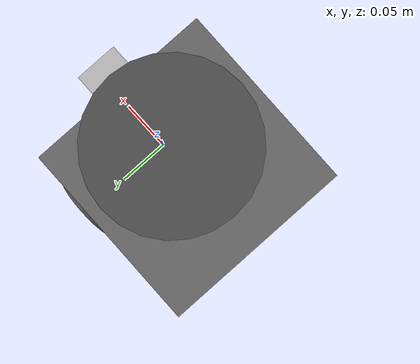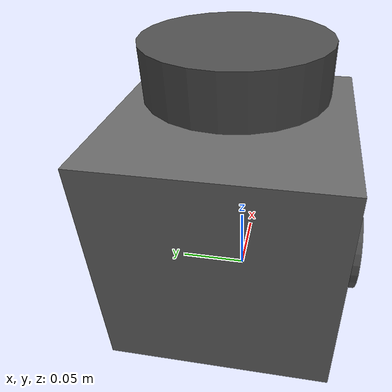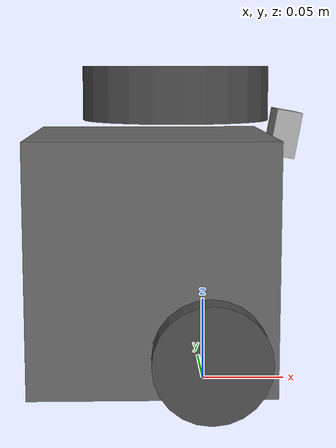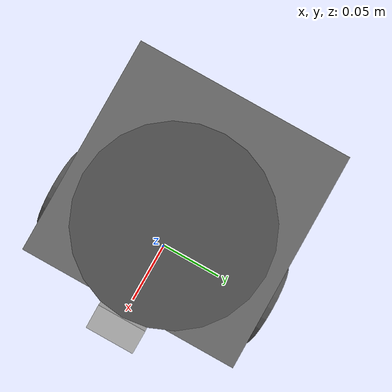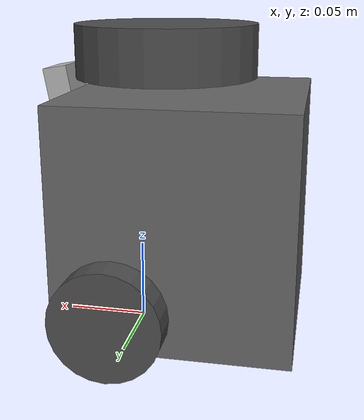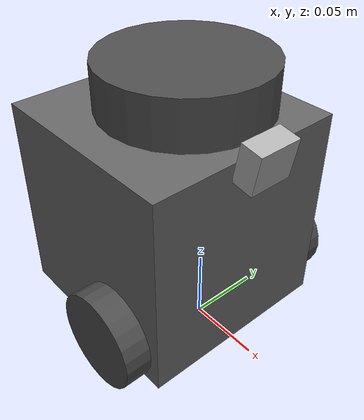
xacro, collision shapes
<?xml version="1.0" ?>
<robot name="turtlebot3_burger"
  xmlns:xacro="http://ros.org/wiki/xacro">

  <!-- Define constants for reuse -->
  <xacro:property name="wheel_radius" value="0.033"/>
  <xacro:property name="wheel_width" value="0.018"/>
  <xacro:property name="wheel_separation" value="0.160"/>
  <xacro:property name="base_length" value="0.140"/>
  <xacro:property name="base_width" value="0.140"/>
  <xacro:property name="base_height" value="0.143"/>

  <!-- Material Definitions -->
  <material name="black">
    <color rgba="0.0 0.0 0.0 1.0"/>
  </material>
  <material name="dark">
    <color rgba="0.3 0.3 0.3 1.0"/>
  </material>
  <material name="light_black">
    <color rgba="0.4 0.4 0.4 1.0"/>
  </material>
  <material name="blue">
    <color rgba="0.0 0.0 0.8 1.0"/>
  </material>
  <material name="green">
    <color rgba="0.0 0.8 0.0 1.0"/>
  </material>
  <material name="grey">
    <color rgba="0.5 0.5 0.5 1.0"/>
  </material>
  <material name="orange">
    <color rgba="1.0 0.4235 0.0392 1.0"/>
  </material>
  <material name="brown">
    <color rgba="0.8706 0.8118 0.7647 1.0"/>
  </material>
  <material name="red">
    <color rgba="0.8 0.0 0.0 1.0"/>
  </material>
  <material name="white">
    <color rgba="1.0 1.0 1.0 1.0"/>
  </material>

  <!-- Base Footprint -->
  <link name="base_footprint"/>

  <!-- Base Link -->
  <link name="base_link">
    <visual>
      <origin xyz="-0.032 0 0.0" rpy="0 0 0"/>
      <geometry>
        <mesh filename="file://$(find project)/models/turltebot3_burger_camera/meshes/burger_base.stl" scale="0.001 0.001 0.001"/>
      </geometry>
      <material name="light_black"/>
    </visual>
    <collision>
      <origin xyz="-0.032 0 0.070" rpy="0 0 0"/>
      <geometry>
        <box size="${base_length} ${base_width} ${base_height}"/>
      </geometry>
    </collision>
    <inertial>
      <origin xyz="0 0 0" rpy="0 0 0"/>
      <mass value="0.82573504"/>
      <inertia ixx="0.72197393" ixy="4.686399e-10" ixz="-1.09525703e-08" iyy="0.72197393" iyz="2.8582649e-09" izz="0.653050163"/>
    </inertial>
  </link>

  <joint name="base_joint" type="fixed">
    <parent link="base_footprint"/>
    <child link="base_link"/>
    <origin xyz="0.0 0.0 0.010" rpy="0 0 0"/>
  </joint>

  <!-- Wheel Left -->
  <link name="wheel_left_link">
    <visual>
      <origin xyz="0 0 0" rpy="1.57 0 0"/>
      <geometry>
        <mesh filename="file://$(find project)/models/turltebot3_burger_camera/meshes/left_tire.stl" scale="0.001 0.001 0.001"/>
      </geometry>
      <material name="dark"/>
    </visual>
    <collision>
      <origin xyz="0 0 0" rpy="0 0 0"/>
      <geometry>
        <cylinder length="${wheel_width}" radius="${wheel_radius}"/>
      </geometry>
    </collision>
    <inertial>
      <origin xyz="0 0 0" />
      <mass value="0.02849894" />
      <inertia ixx="0.0018158194" ixy="-9.3392e-12" ixz="1.04909e-11" iyy="0.0032922126" iyz="5.75694e-11" izz="0.0018158194" />
    </inertial>
  </link>

  <joint name="wheel_left_joint" type="continuous">
    <parent link="base_link"/>
    <child link="wheel_left_link"/>
    <origin xyz="0.0 0.08 0.023" rpy="-1.57 0 0"/>
    <axis xyz="0 0 1"/>
  </joint>

  <!-- Wheel Right -->
  <link name="wheel_right_link">
    <visual>
      <origin xyz="0 0 0" rpy="1.57 0 0"/>
      <geometry>
        <mesh filename="file://$(find project)/models/turltebot3_burger_camera/meshes/right_tire.stl" scale="0.001 0.001 0.001"/>
      </geometry>
      <material name="dark"/>
    </visual>
    <collision>
      <origin xyz="0 0 0" rpy="0 0 0"/>
      <geometry>
        <cylinder length="${wheel_width}" radius="${wheel_radius}"/>
      </geometry>
    </collision>
    <inertial>
      <origin xyz="0 0 0" />
      <mass value="0.02849894" />
      <inertia ixx="0.0018158194" ixy="-9.3392e-12" ixz="1.04909e-11" iyy="0.0032922126" iyz="5.75694e-11" izz="0.0018158194" />
    </inertial>
  </link>

  <joint name="wheel_right_joint" type="continuous">
    <parent link="base_link"/>
    <child link="wheel_right_link"/>
    <origin xyz="0.0 -0.08 0.023" rpy="-1.57 0 0"/>
    <axis xyz="0 0 1"/>
  </joint>

  <!-- Caster Back -->
  <link name="caster_back_link">
    <collision>
      <origin xyz="0 0.001 0" rpy="0 0 0"/>
      <geometry>
        <box size="0.030 0.009 0.020"/>
      </geometry>
    </collision>
    <inertial>
      <origin xyz="0 0 0" />
      <mass value="0.005" />
      <inertia ixx="0.001" ixy="0.0" ixz="0.0" iyy="0.001" iyz="0.0" izz="0.001" />
    </inertial>
  </link>

  <joint name="caster_back_joint" type="fixed">
    <parent link="base_link"/>
    <child link="caster_back_link"/>
    <origin xyz="-0.081 0 -0.004" rpy="-1.57 0 0"/>
  </joint>

  <!-- IMU -->
  <link name="imu_link"/>

  <joint name="imu_joint" type="fixed">
    <parent link="base_link"/>
    <child link="imu_link"/>
    <origin xyz="-0.032 0 0.068" rpy="0 0 0"/>
  </joint>

  <!-- Lidar -->
  <link name="base_scan">
    <visual>
      <origin xyz="0 0 0.0" rpy="0 0 0"/>
      <geometry>
        <mesh filename="file://$(find project)/models/turltebot3_burger_camera/meshes/lds.stl" scale="0.001 0.001 0.001"/>
      </geometry>
      <material name="dark"/>
    </visual>
    <collision>
      <origin xyz="0.015 0 -0.0065" rpy="0 0 0"/>
      <geometry>
        <cylinder length="0.0315" radius="0.055"/>
      </geometry>
    </collision>
    <inertial>
      <mass value="0.114" />
      <origin xyz="0 0 0" />
      <inertia ixx="0.001" ixy="0.0" ixz="0.0" iyy="0.001" iyz="0.0" izz="0.001" />
    </inertial>
  </link>

  <joint name="scan_joint" type="fixed">
    <parent link="base_link"/>
    <child link="base_scan"/>
    <origin xyz="-0.032 0 0.172" rpy="0 0 0"/>
  </joint>

  <!-- Camera -->
  <link name="camera_link">
    <collision>
      <origin xyz="0.005 0.011 0.013" rpy="0 0 0"/>
      <geometry>
        <box size="0.015 0.030 0.027"/>
      </geometry>
    </collision>
  </link>

  <joint name="camera_joint" type="fixed">
    <origin xyz="0.040 -0.011 0.130" rpy="0 0.174 0"/>
    <parent link="base_link"/>
    <child link="camera_link"/>
  </joint>

  <link name="camera_rgb_frame"/>
  <joint name="camera_rgb_joint" type="fixed">
    <origin xyz="0.003 0.011 0.009" rpy="0 0 0"/>
    <parent link="camera_link"/>
    <child link="camera_rgb_frame"/>
  </joint>

  <link name="camera_rgb_optical_frame"/>
  <joint name="camera_rgb_optical_joint" type="fixed">
    <origin xyz="0 0 0" rpy="-1.57 0 -1.57"/>
    <parent link="camera_rgb_frame"/>
    <child link="camera_rgb_optical_frame"/>
  </joint>

  <!-- Plugins — Gazebo Harmonic (gz-sim systems; no libgazebo_ros_* Classic plugins) -->

  <!-- IMU -->
  <gazebo reference="imu_link">
    <sensor name="imu" type="imu">
      <always_on>true</always_on>
      <update_rate>30</update_rate>
      <gz_frame_id>imu_link</gz_frame_id>
      <initial_orientation_as_reference>false</initial_orientation_as_reference>
      <plugin filename="gz-sim-imu-system"
              name="gz::sim::systems::Imu"/>
    </sensor>
  </gazebo>

  <!-- LiDAR -->
  <gazebo reference="base_scan">
    <sensor name="hls_lfcd_lds" type="gpu_lidar">
      <always_on>true</always_on>
      <visualize>true</visualize>
      <pose>-0.032 0 0.171 0 0 0</pose>
      <update_rate>30</update_rate>
      <gz_frame_id>base_scan</gz_frame_id>
      <lidar>
        <scan>
          <horizontal>
            <samples>360</samples>
            <resolution>1.000000</resolution>
            <min_angle>0.000000</min_angle>
            <max_angle>6.280000</max_angle>
          </horizontal>
        </scan>
        <range>
          <min>0.120000</min>
          <max>3.5</max>
          <resolution>0.015000</resolution>
        </range>
        <noise>
          <type>gaussian</type>
          <mean>0.0</mean>
          <stddev>0.01</stddev>
        </noise>
      </lidar>
      <plugin filename="gz-sim-sensors-system"
              name="gz::sim::systems::Sensors">
        <render_engine>ogre2</render_engine>
      </plugin>
    </sensor>
  </gazebo>

  <!-- Camera -->
  <gazebo reference="camera_link">
    <sensor name="camera" type="camera">
      <always_on>true</always_on>
      <update_rate>30</update_rate>
      <gz_frame_id>camera_link</gz_frame_id>
      <camera name="camera">
        <horizontal_fov>1.3962634</horizontal_fov>
        <image>
          <width>640</width>
          <height>480</height>
          <format>R8G8B8</format>
        </image>
        <clip>
          <near>0.1</near>
          <far>100</far>
        </clip>
      </camera>
      <plugin filename="gz-sim-sensors-system"
              name="gz::sim::systems::Sensors">
        <render_engine>ogre2</render_engine>
      </plugin>
    </sensor>
  </gazebo>

  <!-- Differential drive -->
  <gazebo>
    <plugin filename="gz-sim-diff-drive-system"
            name="gz::sim::systems::DiffDrive">
      <left_joint>wheel_left_joint</left_joint>
      <right_joint>wheel_right_joint</right_joint>
      <wheel_separation>${wheel_separation}</wheel_separation>
      <wheel_radius>${wheel_radius}</wheel_radius>
      <max_wheel_torque>20</max_wheel_torque>
      <max_wheel_acceleration>1.0</max_wheel_acceleration>
      <topic>cmd_vel</topic>
      <odom_topic>odom</odom_topic>
      <frame_id>odom</frame_id>
      <child_frame_id>base_footprint</child_frame_id>
      <odom_publish_frequency>30</odom_publish_frequency>
    </plugin>
  </gazebo>

  <!-- Joint state publisher -->
  <gazebo>
    <plugin filename="gz-sim-joint-state-publisher-system"
            name="gz::sim::systems::JointStatePublisher">
      <topic>joint_states</topic>
      <joint_name>wheel_left_joint</joint_name>
      <joint_name>wheel_right_joint</joint_name>
    </plugin>
  </gazebo>

</robot>
